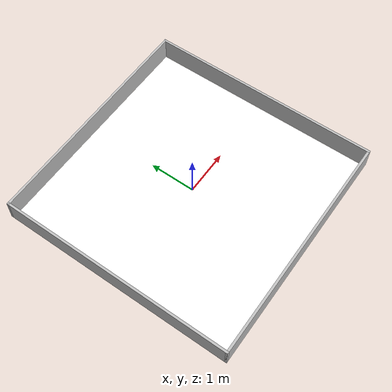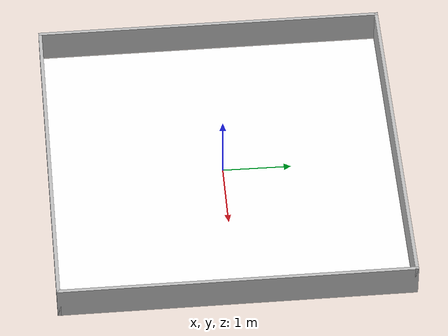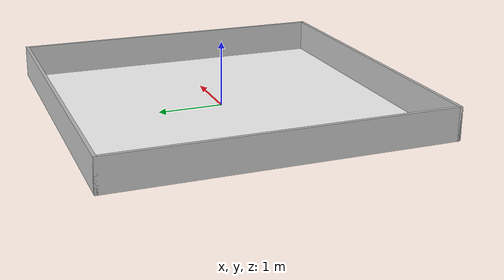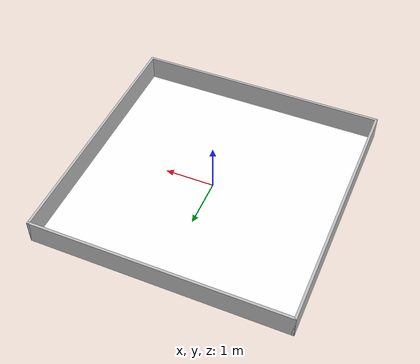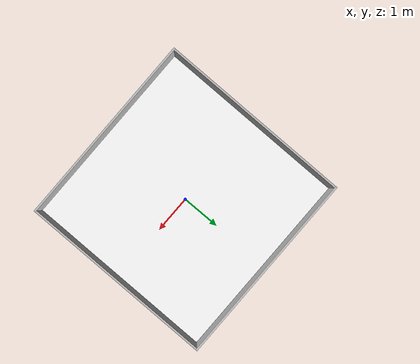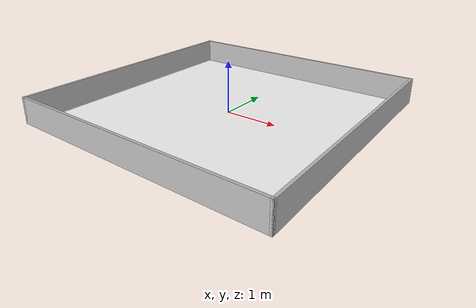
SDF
<?xml version="1.0"?>
<!--
  Gazebo Fortress 世界文件。
  这个 world 只定义“环境”：物理步长、重力、光照和 5m 场地模型。
  机器人本体不会直接写在这里，而是由 sim_world.launch.py 通过 ros_gz_sim/create
  在运行时插入，这样可以用 launch 参数控制机器人出生点。
-->
<sdf version="1.8">
  <!-- world name 是 Gazebo 内部世界名，日志和 GUI 中会看到它。 -->
  <world name="origincar_5m_map_world">
    <!-- Fortress 的物理、传感器和场景广播由 world system 插件提供。 -->
    <plugin filename="ignition-gazebo-physics-system" name="ignition::gazebo::systems::Physics"/>
    <plugin filename="ignition-gazebo-user-commands-system" name="ignition::gazebo::systems::UserCommands"/>
    <plugin filename="ignition-gazebo-scene-broadcaster-system" name="ignition::gazebo::systems::SceneBroadcaster"/>
    <plugin filename="ignition-gazebo-sensors-system" name="ignition::gazebo::systems::Sensors">
      <render_engine>ogre2</render_engine>
    </plugin>
    <plugin filename="ignition-gazebo-imu-system" name="gz::sim::systems::Imu"/>

    <!-- ODE 物理配置。max_step_size=0.001 且 real_time_update_rate=1000
         表示目标物理频率约 1000Hz。 -->
    <physics name="default_physics" type="ode">
      <max_step_size>0.001</max_step_size>
      <real_time_update_rate>1000</real_time_update_rate>
    </physics>

    <!-- 标准地球重力，单位 m/s^2。 -->
    <gravity>0 0 -9.8</gravity>

    <!-- 场景外观设置：环境光、背景色和阴影。 -->
    <scene>
      <ambient>0.6 0.6 0.6 1</ambient>
      <background>0.78 0.82 0.86 1</background>
      <shadows>true</shadows>
    </scene>

    <!-- 单个方向光模拟太阳光，让车体和墙面有基本明暗关系。 -->
    <light name="sun" type="directional">
      <cast_shadows>true</cast_shadows>
      <pose>0 0 10 0 0 0</pose>
      <diffuse>0.9 0.9 0.9 1</diffuse>
      <specular>0.2 0.2 0.2 1</specular>
      <direction>-0.5 0.2 -1</direction>
    </light>

    <!-- 引入本包 models/5m_map_arena 中定义的静态 5m 场地。 -->
    <include>
      <uri>model://5m_map_arena</uri>
    </include>
  </world>
</sdf>

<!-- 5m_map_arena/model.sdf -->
<!--
  Gazebo 静态场地模型。
  该模型提供一个 5m x 5m 的地面平面，四周有低墙，并在地面 visual 上贴
  smart_car_map.png。Nav2 使用的 maps/sim_5m_map.yaml/pgm 与这个场地对应。
-->
<sdf version="1.8">
  <model name="5m_map_arena">
    <!-- static=true 表示该模型不会被物理引擎推动，适合作为固定环境。 -->
    <static>true</static>

    <!-- 地面：只负责物理碰撞，视觉贴图由下方独立 link 提供。 -->
    <link name="floor">
      <!-- 地面厚度 0.02m，中心放在 z=-0.01，使上表面刚好位于 z=0。 -->
      <pose>0 0 -0.01 0 0 0</pose>
      <collision name="collision">
        <geometry>
          <box>
            <size>5.0 5.0 0.02</size>
          </box>
        </geometry>
      </collision>
    </link>

    <!-- 地图贴图：独立于碰撞地面，避免贴图平面和车辆/地面深度冲突。 -->
    <link name="map_texture">
      <pose>0 0 0.001 0 0 0</pose>
      <visual name="visual">
        <geometry>
          <plane>
            <normal>0 0 1</normal>
            <size>5.0 5.0</size>
          </plane>
        </geometry>
        <material>
          <ambient>1 1 1 1</ambient>
          <diffuse>1 1 1 1</diffuse>
          <specular>0.05 0.05 0.05 1</specular>
          <pbr>
            <metal>
              <albedo_map>model://5m_map_arena/materials/textures/smart_car_map.png</albedo_map>
              <metalness>0.0</metalness>
              <roughness>0.8</roughness>
            </metal>
          </pbr>
        </material>
      </visual>
    </link>

    <!-- 北侧墙：y=+2.525，墙厚 0.05m，高 0.5m。 -->
    <link name="north_wall">
      <pose>0 2.525 0.25 0 0 0</pose>
      <collision name="collision">
        <geometry><box><size>5.1 0.05 0.5</size></box></geometry>
      </collision>
      <visual name="visual">
        <geometry><box><size>5.1 0.05 0.5</size></box></geometry>
        <material><ambient>0.75 0.75 0.75 1</ambient><diffuse>0.75 0.75 0.75 1</diffuse></material>
      </visual>
    </link>

    <!-- 南侧墙：y=-2.525。 -->
    <link name="south_wall">
      <pose>0 -2.525 0.25 0 0 0</pose>
      <collision name="collision">
        <geometry><box><size>5.1 0.05 0.5</size></box></geometry>
      </collision>
      <visual name="visual">
        <geometry><box><size>5.1 0.05 0.5</size></box></geometry>
        <material><ambient>0.75 0.75 0.75 1</ambient><diffuse>0.75 0.75 0.75 1</diffuse></material>
      </visual>
    </link>

    <!-- 东侧墙：x=+2.525。 -->
    <link name="east_wall">
      <pose>2.525 0 0.25 0 0 0</pose>
      <collision name="collision">
        <geometry><box><size>0.05 5.1 0.5</size></box></geometry>
      </collision>
      <visual name="visual">
        <geometry><box><size>0.05 5.1 0.5</size></box></geometry>
        <material><ambient>0.75 0.75 0.75 1</ambient><diffuse>0.75 0.75 0.75 1</diffuse></material>
      </visual>
    </link>

    <!-- 西侧墙：x=-2.525。 -->
    <link name="west_wall">
      <pose>-2.525 0 0.25 0 0 0</pose>
      <collision name="collision">
        <geometry><box><size>0.05 5.1 0.5</size></box></geometry>
      </collision>
      <visual name="visual">
        <geometry><box><size>0.05 5.1 0.5</size></box></geometry>
        <material><ambient>0.75 0.75 0.75 1</ambient><diffuse>0.75 0.75 0.75 1</diffuse></material>
      </visual>
    </link>
  </model>
</sdf>
